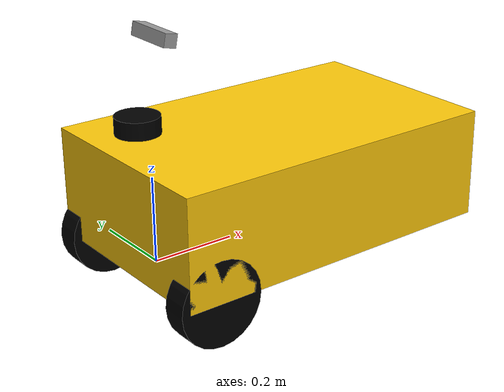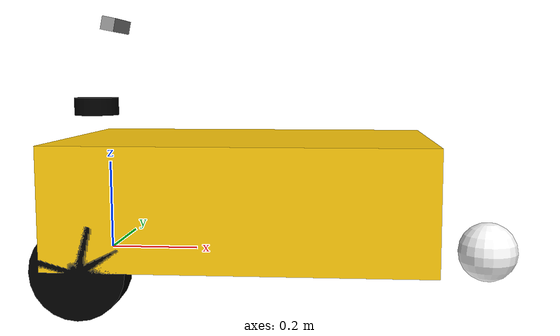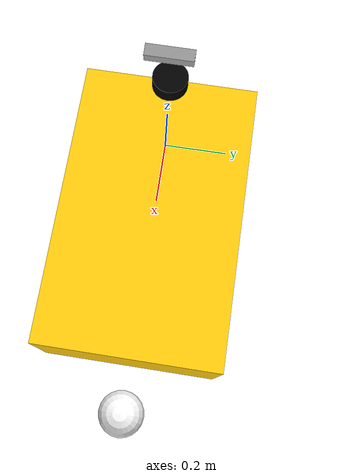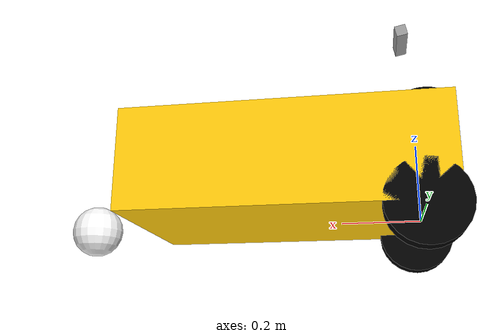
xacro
<?xml version="1.0"?>
<robot xmlns:xacro="http://www.ros.org/wiki/xacro"  name="fejemis">

     <xacro:arg name="use_ros2_control" default="true"/> <!-- husk at slå unstamped til i gz_bridge hvis gazebo control skal bruges-->

    <xacro:include filename="robot_core.xacro" />

    <xacro:if value="$(arg use_ros2_control)">
    <xacro:include filename="ros2_control.xacro" />
    </xacro:if>
    <xacro:unless value="$(arg use_ros2_control)">
    <xacro:include filename="gazebo_control.xacro" />
    </xacro:unless>
    <xacro:include filename="lidar.xacro" />

    <xacro:include filename="camera.xacro" />

</robot>

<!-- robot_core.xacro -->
<robot xmlns:xacro="http://www.ros.org/wiki/xacro">

    <xacro:include filename="inertial_macros.xacro"/>

    <!-- Define Materials -->
    <material name="white">
        <color rgba="1 1 1 1" />
    </material>
    <material name="orange">
        <color rgba="1 0.3 0.1 1"/>
    </material>
    <material name="blue">
        <color rgba="0.2 0.2 1 1"/>
    </material>
    <material name="black">
        <color rgba="0 0 0 1"/>
    </material>
    <material name="yellow">
        <color rgba="1.00 0.792 0.0400 1"/>
    </material>
    <material name="grey">
        <color rgba="0.616 0.616 0.616 1"/>
    </material>

    <!-- Base Link -->
    <link name="base_link"></link>

    <!-- Base Footprint Link -->
    <joint name="base_footprint_joint" type="fixed">
        <parent link="base_link"/>
        <child link="base_footprint"/>
        <origin xyz="0 0 0.1" rpy="0 0 0"/>
    </joint>
    <link name="base_footprint"></link>

    <!-- Chassis Link -->
    <joint name="chassis_joint" type="fixed">
        <parent link="base_link"/>
        <child link="chassis"/>
        <origin xyz="-0.1 0 0"/>
    </joint>
    <link name="chassis">
        <visual>
            <origin xyz="0.426 0 0.130"/>
            <geometry>
                <box size="0.810 0.500 0.259"/>
            </geometry>
            <material name="yellow"/>
        </visual>
        <collision>
            <origin xyz="0.426 0 0.130"/>
            <geometry>
                <box size="0.810 0.500 0.259"/>
            </geometry>
        </collision>
        <xacro:inertial_box mass="0.3" x="0.810" y="0.500" z="0.259">
            <origin xyz="0.426 0 0.130" rpy="0 0 0"/>
        </xacro:inertial_box>
    </link>
    <gazebo reference="chassis">
        <material>Gazebo/Yellow</material>
    </gazebo>

    <!-- Left Wheel Link -->
    <joint name="left_wheel_joint" type="continuous">
        <parent link="base_link"/>
        <child link="left_wheel"/>
        <origin xyz="0 0.220 0" rpy="-${pi/2} 0 0" />
        <axis xyz="0 0 1"/>
    </joint>
    <link name="left_wheel">
        <visual>
            <geometry>
                <cylinder radius="0.1" length="0.06"/>
            </geometry>
            <material name="black"/>
        </visual>
        <collision>
            <geometry>
                <sphere radius="0.1"/>
            </geometry>
        </collision>
        <xacro:inertial_cylinder mass="0.3" length="0.06" radius="0.1">
            <origin xyz="0 0 0" rpy="0 0 0"/>
        </xacro:inertial_cylinder>
    </link>
    <gazebo reference="left_wheel">
        <material>Gazebo/Black</material>
    </gazebo>

    <!-- Right Wheel Link -->
    <joint name="right_wheel_joint" type="continuous">
        <parent link="base_link"/>
        <child link="right_wheel"/>
        <origin xyz="0 -0.220 0" rpy="${pi/2} 0 0" />
        <axis xyz="0 0 -1"/>
    </joint>
    <link name="right_wheel">
        <visual>
            <geometry>
                <cylinder radius="0.1" length="0.06"/>
            </geometry>
            <material name="black"/>
        </visual>
        <collision>
            <geometry>
                <sphere radius="0.1"/>
            </geometry>
        </collision>
        <xacro:inertial_cylinder mass="0.3" length="0.06" radius="0.1">
            <origin xyz="0 0 0" rpy="0 0 0"/>
        </xacro:inertial_cylinder>
    </link>
    <gazebo reference="right_wheel">
        <material>Gazebo/Black</material>
    </gazebo>

    <!-- Caster Wheel Link -->
    <joint name="caster_wheel_joint" type="fixed">
        <parent link="chassis"/>
        <child link="caster_wheel"/>
        <origin xyz="0.970 0 0"/>
    </joint>
    <link name="caster_wheel">
        <visual>
            <geometry>
                <sphere radius="0.0675"/>
            </geometry>
            <material name="white"/>
        </visual>
        <collision>
            <geometry>
                <sphere radius="0.0675"/>
            </geometry>
        </collision>
        <xacro:inertial_sphere mass="0.3" radius="0.0675">
            <origin xyz="0 0 0"/>
        </xacro:inertial_sphere>
    </link>
    <gazebo reference="caster_wheel">
        <material>Gazebo/White</material>
        <mu1 value="0.001"/>
        <mu2 value="0.001"/>
    </gazebo>

</robot>

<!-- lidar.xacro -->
<robot xmlns:xacro="http://www.ros.org/wiki/xacro" >

    <link name="lidar_frame">
        <visual>
            <geometry>
                <cylinder radius="0.05" length="0.04"/>
            </geometry>
            <material name="black"/>
        </visual>
        <collision>
            <geometry>
                <cylinder radius="0.05" length="0.04"/>
            </geometry>
        </collision>
        <xacro:inertial_cylinder mass="0.1" length="0.04" radius="0.05">
            <origin xyz="0.07 0 0.329" rpy="0 0 0"/>
        </xacro:inertial_cylinder>
    </link>

    <joint name="laser_joint" type="fixed">
        <parent link="chassis"/>
        <child link="lidar_frame"/>
        <origin xyz="0.07 0 0.329" rpy="0 0 0"/>
    </joint>

    <gazebo reference="lidar_frame">
        <material>Gazebo/Black</material>

        <sensor name='laser_scanner' type='gpu_lidar'>"
            <pose relative_to='chassis'>0.15 0 0.329 0 0.06 0</pose>
            <topic>lidar</topic>
            <update_rate>30</update_rate>
            <ray>
                <scan>
                    <horizontal>
                        <samples>720</samples>
                        <resolution>1</resolution>
                        <min_angle>-3.14</min_angle>
                        <max_angle>3.14</max_angle>
                    </horizontal>
                    <vertical>
                        <samples>1</samples>
                        <resolution>0.1</resolution>
                        <min_angle>0.01</min_angle>
                        <max_angle>3.14</max_angle>
                    </vertical>
                </scan>
                <range>
                    <min>0.1</min>
                    <max>15.0</max>
                    <resolution>0.01</resolution>
                </range>
            </ray>
            <always_on>1</always_on>
            <visualize>true</visualize>
        </sensor>

    </gazebo>

</robot>

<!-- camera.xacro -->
<robot xmlns:xacro="http://www.ros.org/wiki/xacro"  name="fejemis">

    <joint name="camera_joint" type="fixed">
        <parent link="chassis"/>
        <child link="camera_link"/>
        <origin xyz="0.12 0 0.513" rpy="0 0.2 0"/>
    </joint>

    <link name="camera_link">
        <visual>
            <geometry>
                <box size="0.03 0.124 0.03"/>
            </geometry>
            <material name="grey"/>
        </visual>
    </link>

    <joint name="camera_optical_joint" type="fixed">
        <origin xyz="0 0 0" rpy="${-pi/2} 0 ${-pi/2}" />
        <parent link="camera_link" />
        <child link="camera_link_optical" />
    </joint>

    <link name="camera_link_optical"></link>

    <gazebo reference="camera_link">
        <material>Gazebo/Grey</material>

        <sensor name="camera" type="camera">
            <pose> 0 0 0 0 0 0 </pose>
            <visualize>false</visualize>
            <update_rate>10</update_rate>
            <camera>
                <horizontal_fov>1.089</horizontal_fov>
                <image>
                    <format>R8G8B8</format>
                    <width>640</width>
                    <height>480</height>
                </image>
            </camera>
        </sensor>
    </gazebo>

</robot>
